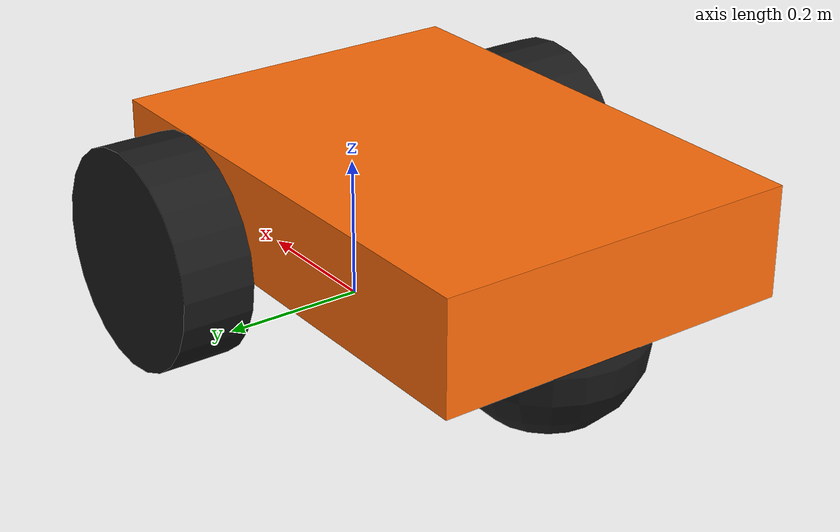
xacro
<?xml version="1.0"?>
<robot name="model_c" xmlns:xacro="https://www.ros.org/wiki/xacro" >

  <xacro:include filename="$(find my_robot_description)/urdf/properties.xacro"/>
  <xacro:include filename="$(find my_robot_description)/urdf/macros.xacro"/>
  <xacro:include filename="$(find my_robot_description)/urdf/my_robot.gazebo"/>
  <xacro:include filename="$(find sensors)/sensor_macro.xacro"/>

  <material name="light_black">
    <color rgba="0.1 0.1 0.1 1.0"/>
  </material>

  <material name="orange">
    <color rgba="${255/255} ${108/255} ${10/255} 1.0"/>
  </material>

  <link name="base_footprint"/>
  <joint type="fixed" name="base_joint">
    <origin xyz="-${baseLength/2-wheelRadius} 0 ${wheelRadius}"  rpy="0 0 0"/>
    <parent link="base_footprint"/>
    <child link="base_link"/>
  </joint>

  <link name="base_link">
    <visual>
      <origin xyz="0 0 ${baseHeight/2}" rpy="0 0 0"/>
      <geometry>
        <box size="${baseLength} ${baseWidth} ${baseHeight}"/>
      </geometry>
      <material name="orange"/>
    </visual>

    <collision>
      <origin xyz="0 0 ${baseHeight/2}" rpy="0 0 0"/>
      <geometry>
        <box size="${baseLength} ${baseWidth} ${baseHeight}"/>
      </geometry>
    </collision>

    <inertial>
      <origin xyz="0 0 ${baseHeight/2}" rpy="0 0 0"/>
      <mass value="${baseMass}"/>
      <xacro:box_inertia m="${baseMass}" x="${baseLength}" y="${baseWidth}" z="${baseHeight}"/>
    </inertial>
  </link>

  <link name="caster_wheel">
    <visual>
      <origin xyz="0 0 0" rpy="0 0 0"/>
      <geometry>
        <sphere radius="${casterRadius}"/>
      </geometry>
      <material name="light_black"/>
    </visual>

    <collision>
      <origin xyz="0 0 0" rpy="0 0 0"/>
      <geometry>
        <sphere radius="${casterRadius}"/>
      </geometry>
    </collision>

    <inertial>
      <origin xyz="0 0 0" rpy="0 0 0"/>
      <mass value="${casterMass}"/>
      <xacro:sphere_inertia m="${casterMass}" r="${casterRadius}"/>
    </inertial>
  </link>

  <joint name="caster_joint"  type="fixed">
    <origin xyz="${-(baseLength/2-casterRadius)} 0 ${-(wheelRadius-casterRadius)}" rpy="0 0 0"/>
    <parent link="base_link"/>
    <child link="caster_wheel"/>
  </joint>

  <link name="wheel_left">
    <visual>
      <origin xyz="0 0 0" rpy="0 1.5707 1.5707"/>
      <geometry>
        <cylinder length="${wheelWidth}" radius="${wheelRadius}"/>
      </geometry>
      <material name="light_black"/>
    </visual>

    <collision>
      <origin xyz="0 0 0" rpy="0 1.5707 1.5707"/>
      <geometry>
        <cylinder length="${wheelWidth}" radius="${wheelRadius}"/>
      </geometry>
    </collision>

    <inertial>
      <origin xyz="0 0 0" rpy="0 1.5707 1.5707"/>
      <mass value="${wheelMass}"/>
      <xacro:cylinder_inertia m="${wheelMass}" r="${wheelRadius}" h="${wheelWidth}"/>
    </inertial>
  </link>

  <link name="wheel_right">
    <visual>
      <origin xyz="0 0 0" rpy="0 1.5707 1.5707"/>
      <geometry>
        <cylinder length="${wheelWidth}" radius="${wheelRadius}"/>
      </geometry>
      <material name="light_black"/>
    </visual>

    <collision>
      <origin xyz="0 0 0" rpy="0 1.5707 1.5707"/>
      <geometry>
        <cylinder length="${wheelWidth}" radius="${wheelRadius}"/>
      </geometry>
    </collision>

    <inertial>
      <origin xyz="0 0 0" rpy="0 1.5707 1.5707"/>
      <mass value="${wheelMass}"/>
      <xacro:cylinder_inertia m="${wheelMass}" r="${wheelRadius}" h="${wheelWidth}"/>
    </inertial>
  </link>

  <joint name="wheel_left_joint" type="continuous">
    <origin xyz="0 ${baseWidth/2+wheelWidth/2} ${wheelRadius}"  rpy="0 0 0"/>
    <parent link="base_footprint"/>
    <child link="wheel_left"/>
    <axis xyz="0 1 0" rpy="0 0 0"/>
    <limit effort="1000" velocity="1000" />
    <dynamics damping="0.0" friction="0.05" />
    <joint_properties damping="0.0" friction="0.0"/>
  </joint>

  <joint name="wheel_right_joint" type="continuous">
    <origin xyz="0 ${-(baseWidth/2+wheelWidth/2)} ${wheelRadius}"  rpy="0 0 0"/>
    <parent link="base_footprint"/>
    <child link="wheel_right"/>
    <axis xyz="0 1 0" rpy="0 0 0"/>
    <limit effort="1000" velocity="1000" />
    <dynamics damping="0.0" friction="0.05" />
    <joint_properties damping="0.0" friction="0.0"/>
  </joint>

</robot>

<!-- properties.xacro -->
<robot xmlns:xacro="https://www.ros.org/wiki/xacro">

	<!-- Constants -->
	<xacro:property name="PI" value="3.1415926535897931"/>

	<!-- base_link properties -->
	<xacro:property name="baseHeight" value="0.15"/>
	<xacro:property name="baseLength" value="0.7"/>
	<xacro:property name="baseWidth" value="0.5"/>
	<xacro:property name="baseMass" value="1.0"/>

	<!-- Differential-drive wheels properties -->
	<xacro:property name="wheelWidth" value="0.1"/>
    <xacro:property name="wheelRadius" value="0.15"/>
	<xacro:property name="wheelMass" value="1.0"/>

	<!-- Caster wheel properties -->
	<xacro:property name="casterRadius" value="0.13"/>
	<xacro:property name="casterMass" value="0.5"/>

</robot>

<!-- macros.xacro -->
<robot xmlns:xacro="https://www.ros.org/wiki/xacro">

  <xacro:macro name="cylinder_inertia" params="m r h">
    <inertia  ixx="${m*(3*r*r+h*h)/12}" ixy = "0" ixz = "0"
              iyy="${m*(3*r*r+h*h)/12}" iyz = "0"
              izz="${m*r*r/2}"
    />
  </xacro:macro>

  <xacro:macro name="box_inertia" params="m x y z">
    <inertia  ixx="${m*(y*y+z*z)/12}" ixy = "0" ixz = "0"
              iyy="${m*(x*x+z*z)/12}" iyz = "0"
              izz="${m*(x*x+z*z)/12}"
    />
  </xacro:macro>

  <xacro:macro name="sphere_inertia" params="m r">
    <inertia  ixx="${2*m*r*r/5}" ixy = "0" ixz = "0"
              iyy="${2*m*r*r/5}" iyz = "0"
              izz="${2*m*r*r/5}"
    />
  </xacro:macro>

  <xacro:macro name="small_inertia">
    <inertial>
      <mass value="0.025" />
      <inertia ixx="5.8083e-4" ixy="0" ixz="0" iyy="3.0833e-5" iyz="0" izz="5.9083e-4" />
    </inertial>
  </xacro:macro>

</robot>
